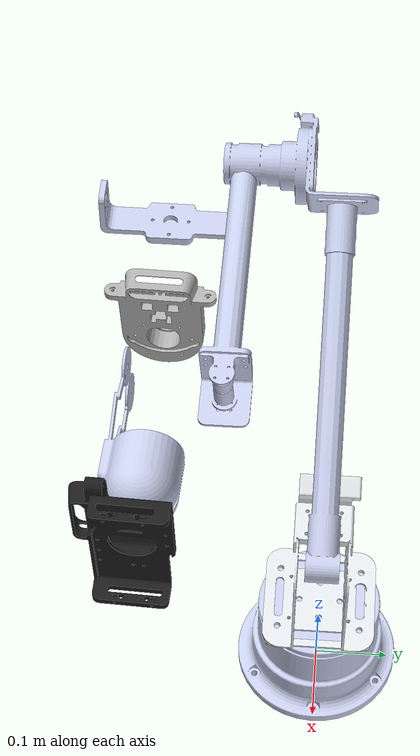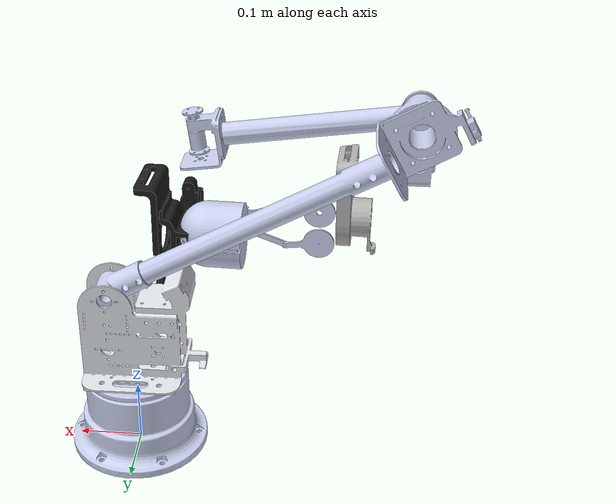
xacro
<?xml version="1.0"?>
<robot xmlns:xacro="http://www.ros.org/wiki/xacro" name="full_sampling_arm_sim">

  <!-- 1. INCLUDE THE REQUIRED MODULES (The "Recipe Book")                             -->

  <!-- The physical structure of the arm (links, joints, transmissions) -->
  <xacro:include filename="$(find roar_simulation)/urdf/arm/arm.xacro" />

  <!-- The simulation logic for the arm (self-collision properties and grasp plugin) -->
  <xacro:include filename="$(find roar_simulation)/urdf/modules/arm_gazebo.xacro" />

  <!-- 2. CREATE A STATIC BASE FOR THE ARM TO SIT ON                                   -->

  <!-- In a stand-alone simulation, the arm needs a fixed base to attach to.
       We create a simple 'world' link for this purpose. -->
  <link name="world" />

  <!-- 3. INSTANTIATE THE ARM AND ATTACH IT TO THE WORLD                               -->

  <!-- First, build the physical arm. We use an empty prefix. -->
  <xacro:robotic_arm prefix="" />

  <!-- Second, "bolt" the arm's base to the static 'world' link we created. -->
  <joint name="world_to_arm_base_joint" type="fixed">
    <parent link="world" />
    <child link="base_arm" /> <!-- 'base_arm' is the root link from arm.xacro -->
    <origin xyz="0 0 0" rpy="0 0 0" /> <!-- Position the arm 0.5m above the ground -->
  </joint>

  <!-- Third, attach all the Gazebo simulation plugins for the arm.
       We pass the same empty prefix to ensure the plugins reference the correct links. -->
  <xacro:arm_gazebo prefix="" />

  <!-- 4. ADD THE ROBOT-WIDE GAZEBO_ROS_CONTROL PLUGIN                                 -->

  <!-- Since this is a stand-alone simulation, it needs its own instance of the
       gazebo_ros_control plugin to manage the arm's transmissions. -->
  <gazebo>
    <plugin name="gazebo_ros_control" filename="libgazebo_ros_control.so">
      <robotNamespace>/</robotNamespace>
    </plugin>
  </gazebo>

</robot>

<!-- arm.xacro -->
<robot xmlns:xacro="http://www.ros.org/wiki/xacro" name="roar_arm">

  <xacro:macro name="robotic_arm" params="prefix">

    <link name="${prefix}base_arm">
      <inertial>
        <origin xyz="5.2096E-17 -5.1794E-16 0.067119" rpy="0 0 0" />
        <mass value="1.3975" />
        <inertia ixx="0.0060529" ixy="-7.9663E-19" ixz="1.4318E-18" iyy="0.0060532" iyz="-3.072E-17" izz="0.0086379" />
      </inertial>
      <visual>
        <origin xyz="0 0 0" rpy="0 0 0" />
        <geometry>
          <mesh filename="file://$(find roar_simulation)/meshes/arm/base_arm.STL" />
        </geometry>
        <material name="">
          <color rgba="0.79216 0.81961 0.93333 1" />
        </material>
      </visual>
      <collision>
        <origin xyz="0 0 0" rpy="0 0 0" />
        <geometry>
          <mesh filename="file://$(find roar_simulation)/meshes/arm/base_arm.STL" />
        </geometry>
      </collision>
    </link>

    <link name="${prefix}link_1">
      <inertial>
        <origin xyz="-0.015423 0.00053292 0.076165" rpy="0 0 0" />
        <mass value="0.69946" />
        <inertia ixx="0.0012889" ixy="9.1195E-07" ixz="-0.00011148" iyy="0.0019852" iyz="-6.3597E-06" izz="0.0013797" />
      </inertial>
      <visual>
        <origin xyz="0 0 0" rpy="0 0 0" />
        <geometry>
          <mesh filename="file://$(find roar_simulation)/meshes/arm/link_1.STL" />
        </geometry>
        <material name="">
          <color rgba="0.89804 0.91765 0.92941 1" />
        </material>
      </visual>
      <collision>
        <origin xyz="0 0 0" rpy="0 0 0" />
        <geometry>
          <mesh filename="file://$(find roar_simulation)/meshes/arm/link_1.STL" />
        </geometry>
      </collision>
    </link>
    <joint name="${prefix}joint_1" type="fixed">
      <origin xyz="0 0 0.133" rpy="0 0 0" />
      <parent link="${prefix}base_arm" />
      <child link="${prefix}link_1" />
      <axis xyz="0 0 1" />
    </joint>

    <link name="${prefix}link_2">
      <inertial>
        <origin xyz="-0.00045755 0.40328 0.043283" rpy="0 0 0" />
        <mass value="0.4979" />
        <inertia ixx="0.0016855" ixy="5.5179E-06" ixz="8.2239E-07" iyy="0.0004916" iyz="-3.1358E-05" izz="0.0016038" />
      </inertial>
      <visual>
        <origin xyz="0 0 0" rpy="0 0 0" />
        <geometry>
          <mesh filename="file://$(find roar_simulation)/meshes/arm/link_2.STL" />
        </geometry>
        <material name="">
          <color rgba="0.79216 0.81961 0.93333 1" />
        </material>
      </visual>
      <collision>
        <origin xyz="0 0 0" rpy="0 0 0" />
        <geometry>
          <mesh filename="file://$(find roar_simulation)/meshes/arm/link_2.STL" />
        </geometry>
      </collision>
    </link>
    <joint name="${prefix}joint_2" type="fixed">
      <origin xyz="0.035502 0 0.1489" rpy="1.6351 -1.0672 -0.073404" />
      <parent link="${prefix}link_1" />
      <child link="${prefix}link_2" />
      <axis xyz="0.035393 0 0.99937" />
    </joint>

    <link name="${prefix}link_3">
      <inertial>
        <origin xyz="-0.000291 -0.019482 0.039042" rpy="0 0 0" />
        <mass value="0.7923" />
        <inertia ixx="0.0012569" ixy="-2.4571E-06" ixz="4.6665E-06" iyy="0.001197" iyz="2.0351E-05" izz="0.0014787" />
      </inertial>
      <visual>
        <origin xyz="0 0 0" rpy="0 0 0" />
        <geometry>
          <mesh filename="file://$(find roar_simulation)/meshes/arm/link_3.STL" />
        </geometry>
        <material name="">
          <color rgba="0.79216 0.81961 0.93333 1" />
        </material>
      </visual>
      <collision>
        <origin xyz="0 0 0" rpy="0 0 0" />
        <geometry>
          <mesh filename="file://$(find roar_simulation)/meshes/arm/link_3.STL" />
        </geometry>
      </collision>
    </link>
    <joint name="${prefix}joint_3" type="fixed">
      <origin xyz="0 0.5275 0.1315" rpy="0 0 -1.0686" />
      <parent link="${prefix}link_2" />
      <child link="${prefix}link_3" />
      <axis xyz="0 0 -1" />
    </joint>

    <link name="${prefix}link_4">
      <inertial>
        <origin xyz="0.00071435 0.0082922 0.024799" rpy="0 0 0" />
        <mass value="0.6384" />
        <inertia ixx="0.0008605" ixy="-1.5754E-06" ixz="3.8008E-06" iyy="0.0008767" iyz="-1.4563E-05" izz="0.0010936" />
      </inertial>
      <visual>
        <origin xyz="0 0 0" rpy="0 0 0" />
        <geometry>
          <mesh filename="file://$(find roar_simulation)/meshes/arm/link_4.STL" />
        </geometry>
        <material name="">
          <color rgba="0.79216 0.81961 0.93333 1" />
        </material>
      </visual>
      <collision>
        <origin xyz="0 0 0" rpy="0 0 0" />
        <geometry>
          <mesh filename="file://$(find roar_simulation)/meshes/arm/link_4.STL" />
        </geometry>
      </collision>
    </link>
    <joint name="${prefix}joint_4" type="fixed">
      <origin xyz="6.8566E-05 -0.12961 0.10761" rpy="-0.50301 1.5354 -2.073" />
      <parent link="${prefix}link_3" />
      <child link="${prefix}link_4" />
      <axis xyz="-0.031013 0 -0.99952" />
    </joint>

    <link name="${prefix}link_5">
      <inertial>
        <origin xyz="8.5395E-05 0.0195 0.015426" rpy="0 0 0" />
        <mass value="0.072706" />
        <inertia ixx="9.5574E-05" ixy="-2.287E-08" ixz="2.2014E-09" iyy="8.2533E-05" iyz="-6.206E-06" izz="0.00016181" />
      </inertial>
      <visual>
        <origin xyz="0 0 0" rpy="0 0 0" />
        <geometry>
          <mesh filename="file://$(find roar_simulation)/meshes/arm/link_5.STL" />
        </geometry>
        <material name="">
          <color rgba="0.69804 0.69804 0.69804 1" />
        </material>
      </visual>
      <collision>
        <origin xyz="0 0 0" rpy="0 0 0" />
        <geometry>
          <mesh filename="file://$(find roar_simulation)/meshes/arm/link_5.STL" />
        </geometry>
      </collision>
    </link>
    <joint name="${prefix}joint_5" type="fixed">
      <origin xyz="-0.0010256 0.083 0.10269" rpy="-1.5692 0.030978 0.050701" />
      <parent link="${prefix}link_4" />
      <child link="${prefix}link_5" />
      <axis xyz="0 0 -1" />
    </joint>

    <link name="${prefix}link_6">
      <inertial>
        <origin xyz="-0.0017619 0.062304 -0.18532" rpy="0 0 0" />
        <mass value="0.14212" />
        <inertia ixx="0.00013968" ixy="3.672E-07" ixz="-4.6713E-08" iyy="0.00027464" iyz="-8.9751E-07" izz="0.00017205" />
      </inertial>
      <visual>
        <origin xyz="0 0 0" rpy="0 0 0" />
        <geometry>
          <mesh filename="file://$(find roar_simulation)/meshes/arm/link_6.STL" />
        </geometry>
        <material name="">
          <color rgba="0.1098 0.1098 0.1098 1" />
        </material>
      </visual>
      <collision>
        <origin xyz="0 0 0" rpy="0 0 0" />
        <geometry>
          <mesh filename="file://$(find roar_simulation)/meshes/arm/link_6.STL" />
        </geometry>
      </collision>
    </link>
    <joint name="${prefix}joint_6" type="fixed">
      <origin xyz="0 -0.050807 0.26285" rpy="0 0 1.560355" />
      <parent link="${prefix}link_5" />
      <child link="${prefix}link_6" />
      <axis xyz="0 0 -1" />
    </joint>

    <link name="${prefix}Right_ee">
      <inertial>
        <origin xyz="-0.00085871 0.15395 0.039904" rpy="0 0 0" />
        <mass value="0.12335" />
        <inertia ixx="0.00024187" ixy="-4.1406E-06" ixz="2.7514E-06" iyy="0.00013628" iyz="-3.1315E-06" izz="0.00016437" />
      </inertial>
      <visual>
        <origin xyz="0 0 0" rpy="0 0 0" />
        <geometry>
          <mesh filename="file://$(find roar_simulation)/meshes/arm/Right_ee.STL" />
        </geometry>
        <material name="">
          <color rgba="0.79216 0.81961 0.93333 1" />
        </material>
      </visual>
      <collision>
        <origin xyz="0 0 0" rpy="0 0 0" />
        <geometry>
          <mesh filename="file://$(find roar_simulation)/meshes/arm/Right_ee.STL" />
        </geometry>
      </collision>
    </link>
    <joint name="${prefix}joint_ree" type="fixed">
      <origin xyz="-0.030505 0.047691 -0.19085" rpy="1.5698 0 0.010445" />
      <parent link="${prefix}link_6" />
      <child link="${prefix}Right_ee" />
      <axis xyz="0 -0.0010429 1" />
    </joint>

    <link name="${prefix}Left_ee">
      <inertial>
        <origin xyz="0.0019003 -0.1544 -0.039691" rpy="0 0 0" />
        <mass value="0.12478" />
        <inertia ixx="0.00024968" ixy="-3.9203E-06" ixz="4.0773E-06" iyy="0.00014248" iyz="-4.0157E-06" izz="0.00016861" />
      </inertial>
      <visual>
        <origin xyz="0 0 0" rpy="0 0 0" />
        <geometry>
          <mesh filename="file://$(find roar_simulation)/meshes/arm/Left_ee.STL" />
        </geometry>
        <material name="">
          <color rgba="0.79216 0.81961 0.93333 1" />
        </material>
      </visual>
      <collision>
        <origin xyz="0 0 0" rpy="0 0 0" />
        <geometry>
          <mesh filename="file://$(find roar_simulation)/meshes/arm/Left_ee.STL" />
        </geometry>
      </collision>
    </link>
    <joint name="${prefix}joint_lee" type="fixed">
      <origin xyz="0.029492 0.048318 -0.19085" rpy="-1.5718 0 0.010445" />
      <parent link="${prefix}link_6" />
      <child link="${prefix}Left_ee" />
      <axis xyz="0 -0.0010429 1" />
    </joint>

  </xacro:macro>
</robot>
